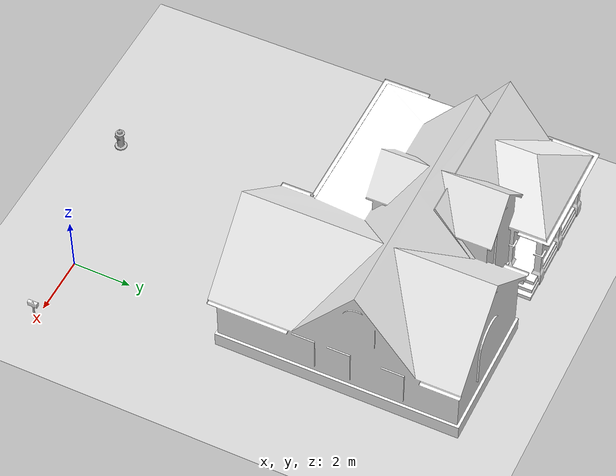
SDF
<sdf version="1.4">
 <world name="default">
  <light name="sun" type="directional">
   <pose>0 0 10 0 -0 0</pose>
   <diffuse>0.8 0.8 0.8 1</diffuse>
   <specular>0.2 0.2 0.2 1</specular>
   <attenuation>
    <range>1000</range>
    <constant>0.9</constant>
    <linear>0.01</linear>
    <quadratic>0.001</quadratic>
   </attenuation>
   <direction>-0.5 0.1 -0.9</direction>
  </light>
  <model name="ground_plane">
   <static>1</static>
   <link name="link">
    <collision name="collision">
     <geometry><plane><normal>0 0 1</normal><size>100 100</size></plane></geometry>
     <surface><friction><ode><mu>100</mu><mu2>50</mu2></ode></friction></surface>
    </collision>
    <visual name="visual">
     <cast_shadows>0</cast_shadows>
     <geometry><plane><normal>0 0 1</normal><size>100 100</size></plane></geometry>
     <material>
      <script><uri>file://media/materials/scripts/gazebo.material</uri><name>Gazebo/Grey</name></script>
     </material>
    </visual>
    <velocity_decay><linear>0</linear><angular>0</angular></velocity_decay>
   </link>
  </model>
  <physics type="ode">
   <max_step_size>0.001</max_step_size>
   <real_time_factor>1</real_time_factor>
   <real_time_update_rate>1000</real_time_update_rate>
   <gravity>0 0 -9.8</gravity>
  </physics>
  <scene><ambient>0.4 0.4 0.4 1</ambient><background>0.7 0.7 0.7 1</background><shadows>1</shadows></scene>
  <spherical_coordinates>
   <surface_model>EARTH_WGS84</surface_model>
   <latitude_deg>0</latitude_deg>
   <longitude_deg>0</longitude_deg>
   <elevation>0</elevation>
   <heading_deg>0</heading_deg>
  </spherical_coordinates>
  <model name="fire_hydrant">
   <static>1</static>
   <link name="link">
    <collision name="collision">
     <geometry><mesh><uri>model://fire_hydrant/meshes/fire_hydrant.dae</uri></mesh></geometry>
    </collision>
    <visual name="visual">
     <geometry><mesh><uri>model://fire_hydrant/meshes/fire_hydrant.dae</uri></mesh></geometry>
    </visual>
    <velocity_decay><linear>0</linear><angular>0</angular></velocity_decay>
   </link>
   <pose>-5 -1 0 0 -0 0</pose>
  </model>
  <model name="House 1">
   <static>1</static>
   <link name="link">
    <collision name="collision">
     <geometry><mesh><uri>model://house_1/meshes/house_1.dae</uri></mesh></geometry>
    </collision>
    <visual name="visual">
     <geometry><mesh><uri>model://house_1/meshes/house_1.dae</uri></mesh></geometry>
     <material>
      <script>
       <uri>model://house_1/materials/scripts</uri>
       <uri>model://house_1/materials/textures</uri>
       <name>House_1/Diffuse</name>
      </script>
      <shader type="normal_map_object_space"><normal_map>House_1_Normal.png</normal_map></shader>
     </material>
    </visual>
    <velocity_decay><linear>0</linear><angular>0</angular></velocity_decay>
   </link>
   <pose>-4 10 0 0 -0 0</pose>
  </model>
  <model name="Mailbox">
   <link name="link">
    <collision name="collision">
     <geometry><mesh><uri>model://mailbox/meshes/mailbox.dae</uri></mesh></geometry>
    </collision>
    <visual name="visual">
     <geometry><mesh><uri>model://mailbox/meshes/mailbox.dae</uri></mesh></geometry>
     <material>
      <script>
       <uri>model://mailbox/materials/scripts</uri>
       <uri>model://mailbox/materials/textures</uri>
       <name>Mailbox/Diffuse</name>
      </script>
     </material>
    </visual>
    <velocity_decay><linear>0</linear><angular>0</angular></velocity_decay>
    <inertial>
     <inertia><ixx>1</ixx><ixy>0</ixy><ixz>0</ixz><iyy>1</iyy><iyz>0</iyz><izz>1</izz></inertia>
     <mass>1</mass>
    </inertial>
   </link>
   <pose>2.53676 -0 0 -1.1e-05 1e-06 1.61559e-27</pose>
   <static>0</static>
  </model>
 </world>
</sdf>
